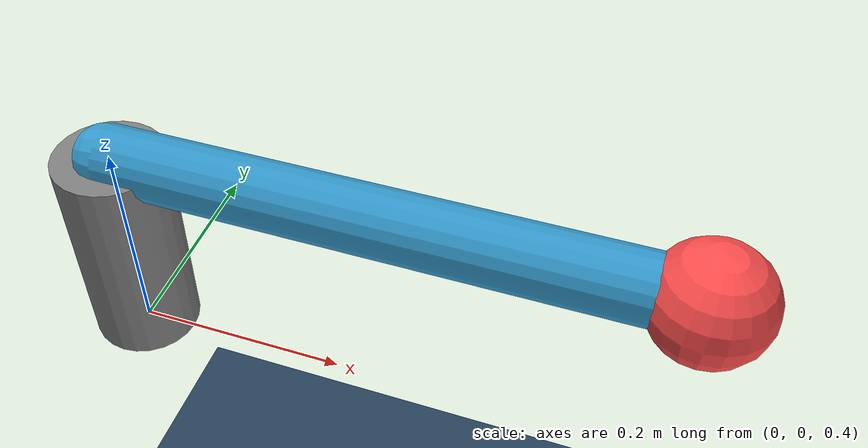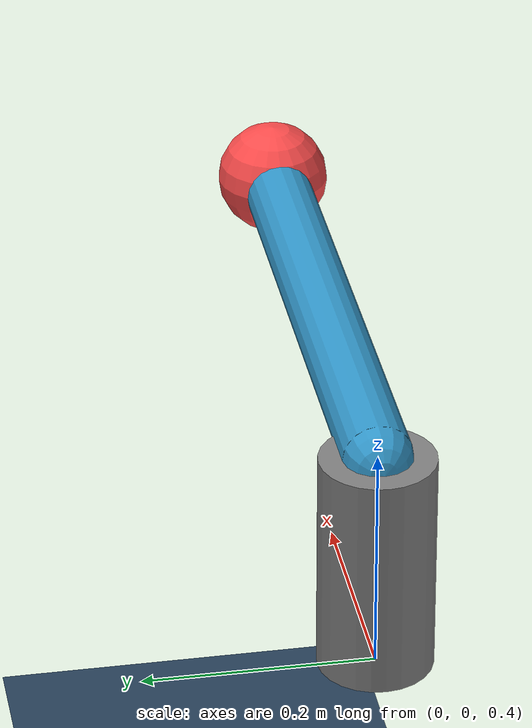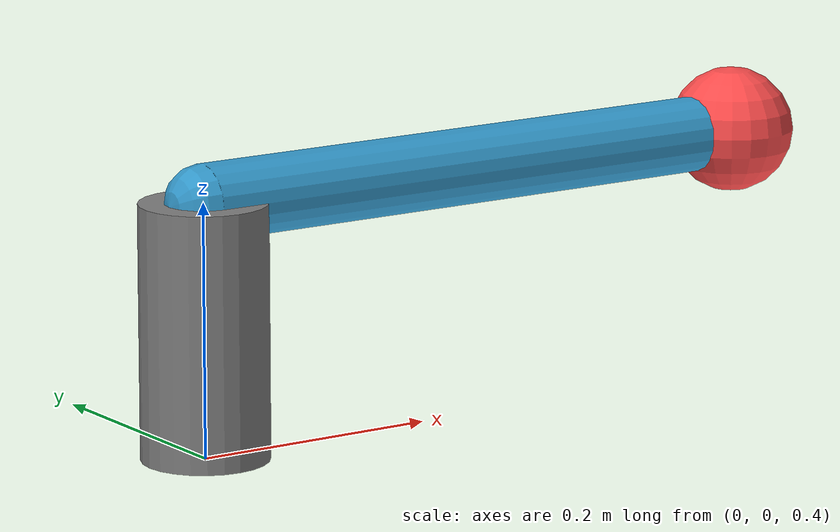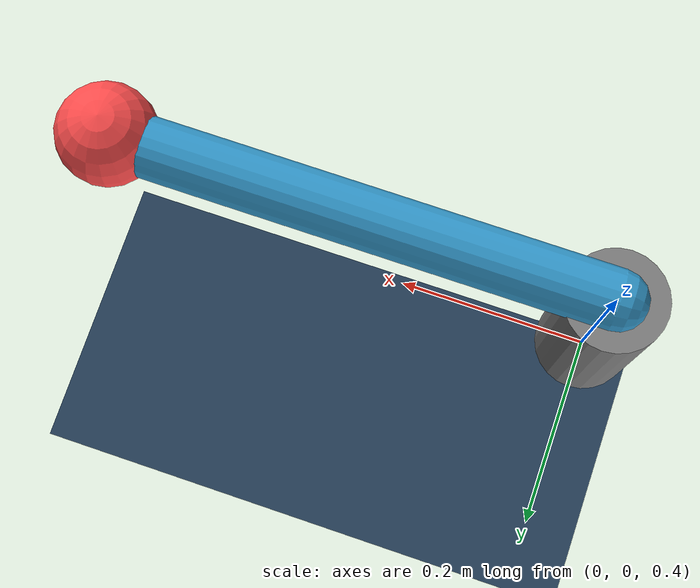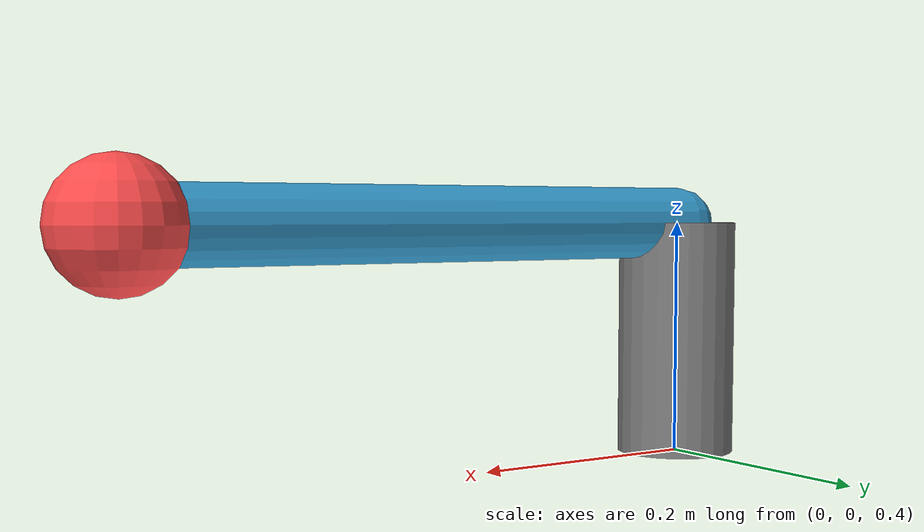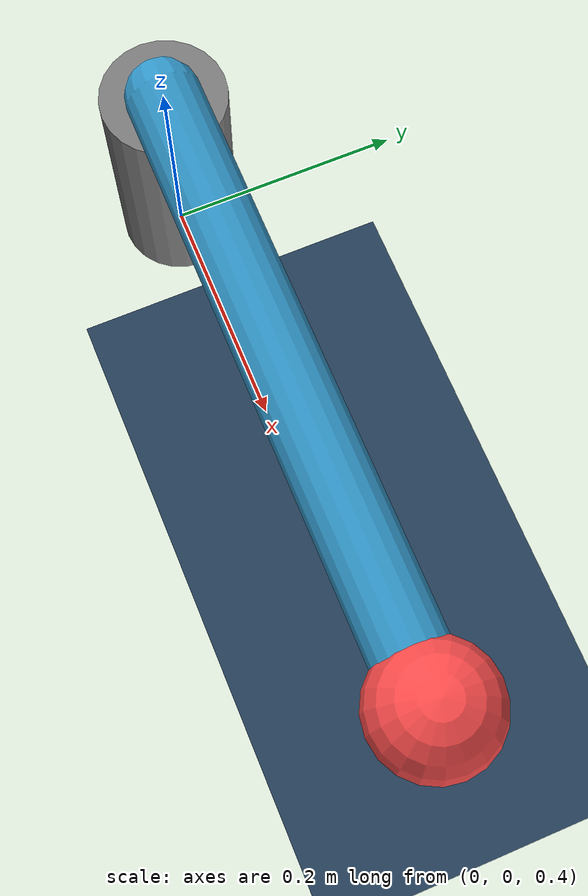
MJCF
<mujoco model="fr3 scene">

  <statistic center="0.2 0 0.4" extent=".8" />

  <visual>
    <headlight diffuse="0.6 0.6 0.6" ambient="0.3 0.3 0.3" specular="0 0 0" />
    <rgba haze="0.15 0.25 0.35 1" />
    <global azimuth="120" elevation="-20" />
  </visual>

  <asset>
    <texture type="skybox" builtin="gradient" rgb1="0.3 0.5 0.7" rgb2="0 0 0" width="512"
      height="3072" />
    <texture type="2d" name="groundplane" builtin="checker" mark="edge" rgb1="0.2 0.3 0.4"
      rgb2="0.1 0.2 0.3"
      markrgb="0.8 0.8 0.8" width="300" height="300" />
    <material name="groundplane" texture="groundplane" texuniform="true" texrepeat="5 5"
      reflectance="0.2" />
  </asset>

  <worldbody>
    <light pos="0 0 1.5" dir="0 0 -1" directional="true" />
    <geom name="floor" type="plane" size="5 5 .1" material="groundplane" />

    <!-- Simple 1-link robot -->
    <body name="base" pos="0 0 0.5">
      <geom type="cylinder" size="0.05 0.1" rgba="0.5 0.5 0.5 1"/>
      <body name="link1" pos="0 0 0.1">
        <joint name="joint1" type="hinge" axis="0 0 1" range="-180 180"/>
        <geom type="capsule" fromto="0 0 0 0.5 0 0" size="0.03" rgba="0.2 0.6 0.8 1"/>
        <geom type="sphere" pos="0.5 0 0" size="0.05" rgba="1 0.3 0.3 1"/>
      </body>
    </body>
  </worldbody>
</mujoco>
